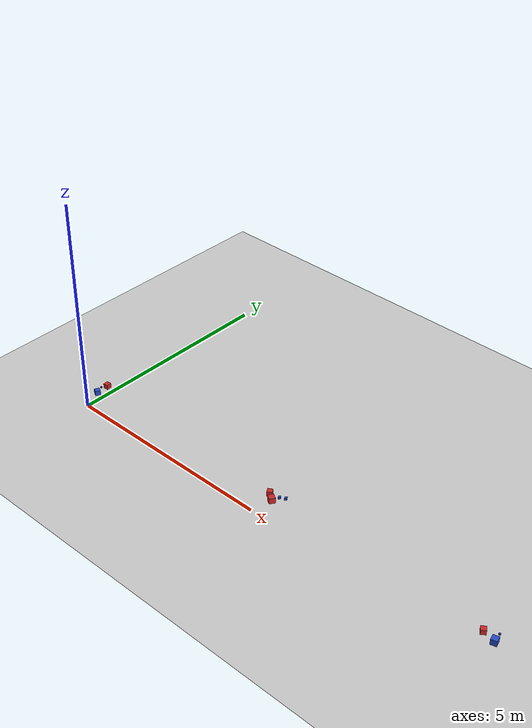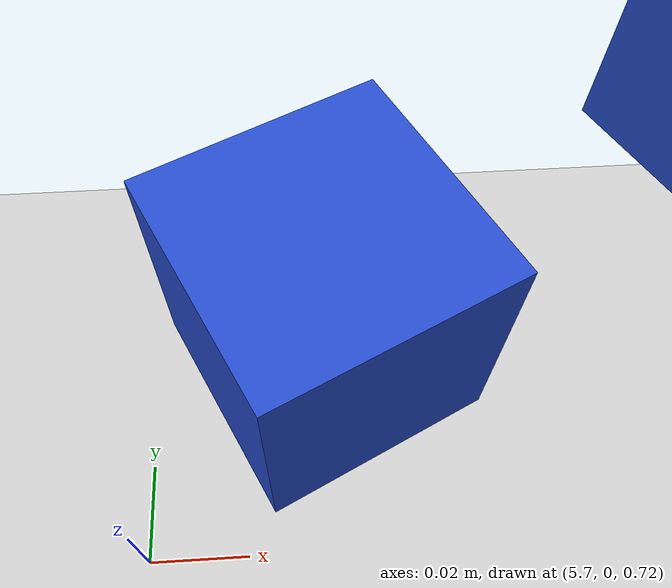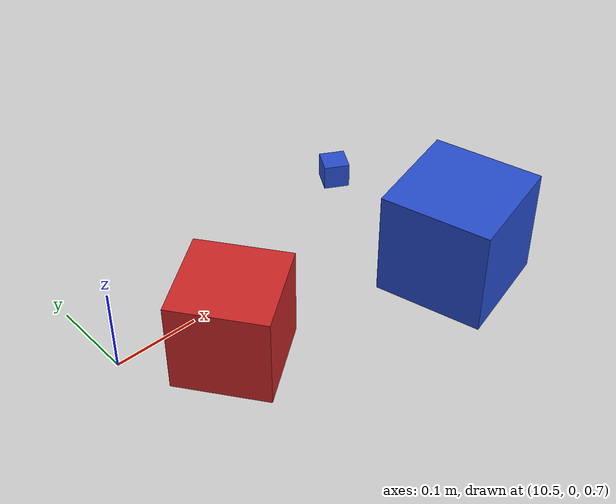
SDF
<sdf version="1.4">
 <world name="simple">
  <include><uri>model://ground_plane</uri></include>
  <include><uri>model://sun</uri></include>
  <include>
   <uri>model://red_cube11cm</uri>
   <name>block1</name>
   <pose>0.560941877563 0.153616736138 0.75 0 0 -1.47891037588</pose>
  </include>
  <include>
   <uri>model://blue_cube3cm</uri>
   <name>block2</name>
   <pose>0.509553262591 0.0246769795919 0.75 0 0 -3.00862001452</pose>
  </include>
  <include>
   <uri>model://blue_cube11cm</uri>
   <name>block4</name>
   <pose>0.575518395117 -0.141505761186 0.75 0 0 1.14851744799</pose>
  </include>
  <include>
   <uri>model://red_cube13cm</uri>
   <name>block51</name>
   <pose>5.653947700902 -0.097402894128 0.75 0 0 -0.555202967788</pose>
  </include>
  <include>
   <uri>model://blue_cube5cm</uri>
   <name>block52</name>
   <pose>5.737253730557 0.0407451919931 0.75 0 0 -1.11572082559</pose>
  </include>
  <include>
   <uri>model://red_cube11cm</uri>
   <name>block53</name>
   <pose>5.50239629689 0.0207930853417 0.75 0 0 -1.02646132145</pose>
  </include>
  <include>
   <uri>model://blue_cube5cm</uri>
   <name>block54</name>
   <pose>5.847660319638 0.103398562641 0.75 0 0 -1.08449481668</pose>
  </include>
  <include>
   <uri>model://red_cube11cm</uri>
   <name>block11</name>
   <pose>10.602858722582 -0.0678591048643 0.75 0 0 -2.5063688768</pose>
  </include>
  <include>
   <uri>model://blue_cube13cm</uri>
   <name>block12</name>
   <pose>10.880983108751 -0.126020054957 0.75 0 0 1.85109343271</pose>
  </include>
  <include>
   <uri>model://blue_cube3cm</uri>
   <name>block14</name>
   <pose>10.856564673355 0.0539852008706 0.75 0 0 -0.510095647716</pose>
  </include>
 </world>
</sdf>

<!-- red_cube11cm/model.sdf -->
<sdf version='1.4'>
  <model name="red_cube11cm">
      <static>0</static>
      <link name='link'>
        <inertial>
          <mass>0.1</mass>
          <inertia>
            <ixx>0.001</ixx>
            <ixy>0.000000</ixy>
            <ixz>0.000000</ixz>
            <iyy>0.001</iyy>
            <iyz>0.000000</iyz>
            <izz>0.001</izz>
          </inertia>
        </inertial>
        <collision name='collision'>
          <geometry>
            <box>
              <size>0.110 0.110 0.110</size>
            </box>
          </geometry>
          <surface>
            <friction>
              <ode>
                <mu>15.0</mu>
                <mu2>15.0</mu2>
              </ode>
            </friction>
            <contact>
              <ode>
                <kp>1000000.0</kp>
                <kd>100.0</kd>
                <max_vel>1.0</max_vel>
                <min_depth>0.002</min_depth>
              </ode>
            </contact>
          </surface>
        </collision>
        <visual name='visual'>
          <geometry>
            <box>
              <size>0.110 0.110 0.110</size>
            </box>
          </geometry>
          <material>
            <script>
              <uri>file://media/materials/scripts/gazebo.material</uri>
              <name>Gazebo/Red</name>
            </script>
          </material>
        </visual>
        <velocity_decay>
          <linear>0.000000</linear>
          <angular>0.000000</angular>
        </velocity_decay>
        <self_collide>0</self_collide>
        <kinematic>0</kinematic>
        <gravity>1</gravity>
      </link>
  </model>
</sdf>

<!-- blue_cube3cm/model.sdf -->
<sdf version='1.4'>
  <model name="blue_cube3cm">
      <static>0</static>
      <link name='link'>
        <inertial>
          <mass>0.1</mass>
          <inertia>
            <ixx>0.001</ixx>
            <ixy>0.000000</ixy>
            <ixz>0.000000</ixz>
            <iyy>0.001</iyy>
            <iyz>0.000000</iyz>
            <izz>0.001</izz>
          </inertia>
        </inertial>
        <collision name='collision'>
          <geometry>
            <box>
              <size>0.030 0.030 0.030</size>
            </box>
          </geometry>
          <surface>
            <friction>
              <ode>
                <mu>15.0</mu>
                <mu2>15.0</mu2>
              </ode>
            </friction>
            <contact>
              <ode>
                <kp>1000000.0</kp>
                <kd>100.0</kd>
                <max_vel>1.0</max_vel>
                <min_depth>0.002</min_depth>
              </ode>
            </contact>
          </surface>
        </collision>
        <visual name='visual'>
          <geometry>
            <box>
              <size>0.030 0.030 0.030</size>
            </box>
          </geometry>
          <material>
            <script>
              <uri>file://media/materials/scripts/gazebo.material</uri>
              <name>Gazebo/Blue</name>
            </script>
          </material>
        </visual>
        <velocity_decay>
          <linear>0.000000</linear>
          <angular>0.000000</angular>
        </velocity_decay>
        <self_collide>0</self_collide>
        <kinematic>0</kinematic>
        <gravity>1</gravity>
      </link>
  </model>
</sdf>

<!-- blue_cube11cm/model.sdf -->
<sdf version='1.4'>
  <model name="blue_cube11cm_11cm">
      <static>0</static>
      <link name='link'>
        <inertial>
          <mass>0.1</mass>
          <inertia>
            <ixx>0.001</ixx>
            <ixy>0.000000</ixy>
            <ixz>0.000000</ixz>
            <iyy>0.001</iyy>
            <iyz>0.000000</iyz>
            <izz>0.001</izz>
          </inertia>
        </inertial>
        <collision name='collision'>
          <geometry>
            <box>
              <size>0.110 0.110 0.110</size>
            </box>
          </geometry>
          <surface>
            <friction>
              <ode>
                <mu>15.0</mu>
                <mu2>15.0</mu2>
              </ode>
            </friction>
            <contact>
              <ode>
                <kp>1000000.0</kp>
                <kd>100.0</kd>
                <max_vel>1.0</max_vel>
                <min_depth>0.002</min_depth>
              </ode>
            </contact>
          </surface>
        </collision>
        <visual name='visual'>
          <geometry>
            <box>
              <size>0.110 0.110 0.110</size>
            </box>
          </geometry>
          <material>
            <script>
              <uri>file://media/materials/scripts/gazebo.material</uri>
              <name>Gazebo/Blue</name>
            </script>
          </material>
        </visual>
        <velocity_decay>
          <linear>0.000000</linear>
          <angular>0.000000</angular>
        </velocity_decay>
        <self_collide>0</self_collide>
        <kinematic>0</kinematic>
        <gravity>1</gravity>
      </link>
  </model>
</sdf>

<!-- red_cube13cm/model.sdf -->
<sdf version='1.4'>
  <model name="red_cube13cm">
      <static>0</static>
      <link name='link'>
        <inertial>
          <mass>0.3</mass>
          <inertia>
            <ixx>0.001</ixx>
            <ixy>0.000000</ixy>
            <ixz>0.000000</ixz>
            <iyy>0.001</iyy>
            <iyz>0.000000</iyz>
            <izz>0.001</izz>
          </inertia>
        </inertial>
        <collision name='collision'>
          <geometry>
            <box>
              <size>0.130 0.130 0.130</size>
            </box>
          </geometry>
          <surface>
            <friction>
              <ode>
                <mu>5.0</mu>
                <mu2>5.0</mu2>
              </ode>
            </friction>
            <contact>
              <ode>
                <kp>1000000.0</kp>
                <kd>100.0</kd>
                <max_vel>1.0</max_vel>
                <min_depth>0.002</min_depth>
              </ode>
            </contact>
          </surface>
        </collision>
        <visual name='visual'>
          <geometry>
            <box>
              <size>0.130 0.130 0.130</size>
            </box>
          </geometry>
          <material>
            <script>
              <uri>file://media/materials/scripts/gazebo.material</uri>
              <name>Gazebo/Red</name>
            </script>
          </material>
        </visual>
        <velocity_decay>
          <linear>0.000000</linear>
          <angular>0.000000</angular>
        </velocity_decay>
        <self_collide>0</self_collide>
        <kinematic>0</kinematic>
        <gravity>1</gravity>
      </link>
  </model>
</sdf>

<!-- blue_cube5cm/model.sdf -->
<sdf version='1.4'>
  <model name="blue_cube5cm">
      <static>0</static>
      <link name='link'>
        <inertial>
          <mass>0.1</mass>
          <inertia>
            <ixx>0.001</ixx>
            <ixy>0.000000</ixy>
            <ixz>0.000000</ixz>
            <iyy>0.001</iyy>
            <iyz>0.000000</iyz>
            <izz>0.001</izz>
          </inertia>
        </inertial>
        <collision name='collision'>
          <geometry>
            <box>
              <size>0.050 0.050 0.050</size>
            </box>
          </geometry>
          <surface>
            <friction>
              <ode>
                <mu>15.0</mu>
                <mu2>15.0</mu2>
              </ode>
            </friction>
            <contact>
              <ode>
                <kp>1000000.0</kp>
                <kd>100.0</kd>
                <max_vel>1.0</max_vel>
                <min_depth>0.002</min_depth>
              </ode>
            </contact>
          </surface>
        </collision>
        <visual name='visual'>
          <geometry>
            <box>
              <size>0.050 0.050 0.050</size>
            </box>
          </geometry>
          <material>
            <script>
              <uri>file://media/materials/scripts/gazebo.material</uri>
              <name>Gazebo/Blue</name>
            </script>
          </material>
        </visual>
        <velocity_decay>
          <linear>0.000000</linear>
          <angular>0.000000</angular>
        </velocity_decay>
        <self_collide>0</self_collide>
        <kinematic>0</kinematic>
        <gravity>1</gravity>
      </link>
  </model>
</sdf>

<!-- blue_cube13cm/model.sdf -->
<sdf version='1.4'>
  <model name="blue_cube13cm">
      <static>0</static>
      <link name='link'>
        <inertial>
          <mass>0.1</mass>
          <inertia>
            <ixx>0.001</ixx>
            <ixy>0.000000</ixy>
            <ixz>0.000000</ixz>
            <iyy>0.001</iyy>
            <iyz>0.000000</iyz>
            <izz>0.001</izz>
          </inertia>
        </inertial>
        <collision name='collision'>
          <geometry>
            <box>
              <size>0.130 0.130 0.130</size>
            </box>
          </geometry>
          <surface>
            <friction>
              <ode>
                <mu>15.0</mu>
                <mu2>15.0</mu2>
              </ode>
            </friction>
            <contact>
              <ode>
                <kp>1000000.0</kp>
                <kd>100.0</kd>
                <max_vel>1.0</max_vel>
                <min_depth>0.002</min_depth>
              </ode>
            </contact>
          </surface>
        </collision>
        <visual name='visual'>
          <geometry>
            <box>
              <size>0.130 0.130 0.130</size>
            </box>
          </geometry>
          <material>
            <script>
              <uri>file://media/materials/scripts/gazebo.material</uri>
              <name>Gazebo/Blue</name>
            </script>
          </material>
        </visual>
        <velocity_decay>
          <linear>0.000000</linear>
          <angular>0.000000</angular>
        </velocity_decay>
        <self_collide>0</self_collide>
        <kinematic>0</kinematic>
        <gravity>1</gravity>
      </link>
  </model>
</sdf>
